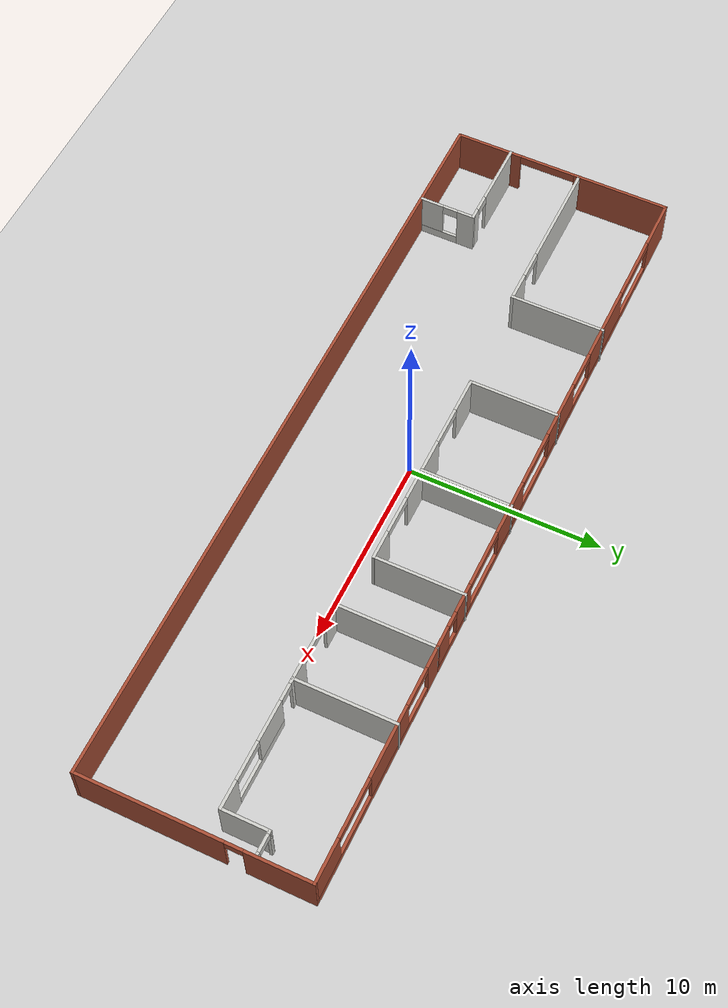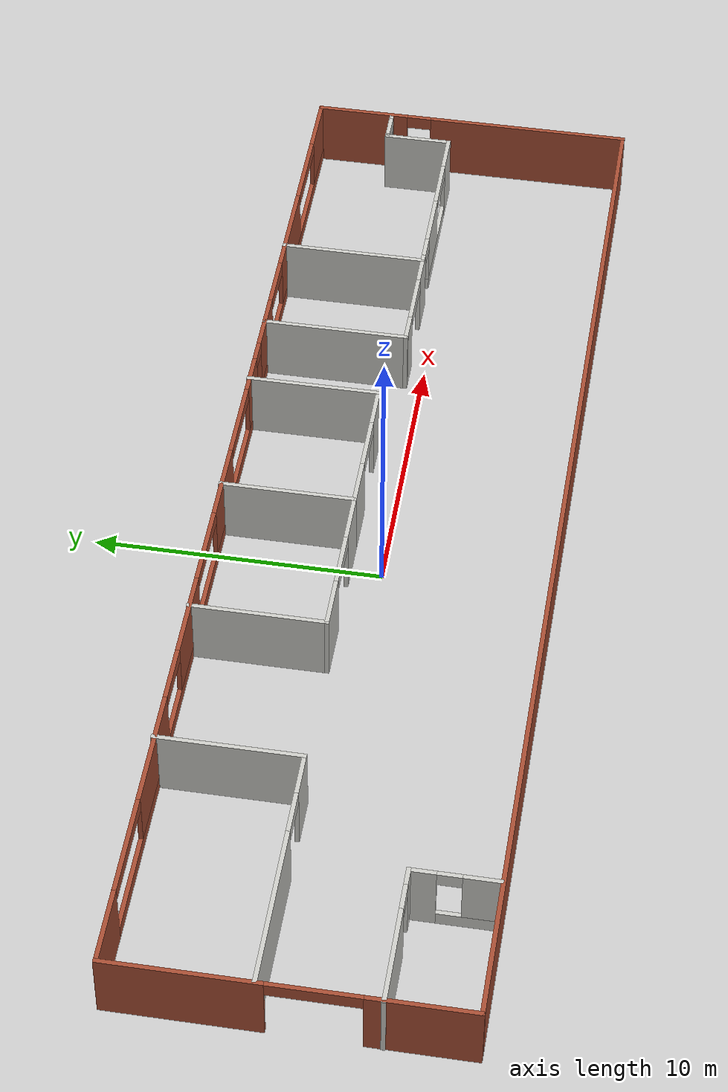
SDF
<sdf version="1.6">
 <world name="default">
  <model name="ground_plane">
   <static>1</static>
   <link name="link">
    <collision name="collision">
     <geometry><plane><normal>0 0 1</normal><size>100 100</size></plane></geometry>
     <surface><friction><ode><mu>100</mu><mu2>50</mu2></ode></friction></surface>
    </collision>
    <visual name="visual">
     <cast_shadows>0</cast_shadows>
     <geometry><plane><normal>0 0 1</normal><size>100 100</size></plane></geometry>
     <material>
      <script><uri>file://media/materials/scripts/gazebo.material</uri><name>Gazebo/Grey</name></script>
     </material>
    </visual>
   </link>
  </model>
  <model name="match_5">
   <pose>1.3159 -0.064447 0 0 -0 0</pose>
   <link name="Wall_0">
    <pose>13.3885 0.676422 0 0 -0 3.14159</pose>
    <visual name="Wall_0_Visual_0">
     <pose>-4.75004 0 1.25 0 -0 0</pose>
     <geometry><box><size>1.49992 0.15 2.5</size></box></geometry>
     <material>
      <script><uri>file://media/materials/scripts/gazebo.material</uri><name>Gazebo/CeilingTiled</name></script>
      <ambient>1 1 1 1</ambient>
     </material>
    </visual>
    <collision name="Wall_0_Collision_0">
     <geometry><box><size>1.49992 0.15 2.5</size></box></geometry>
     <pose>-4.75004 0 1.25 0 -0 0</pose>
    </collision>
    <visual name="Wall_0_Visual_1">
     <pose>1.70753 0 1.25 0 -0 0</pose>
     <geometry><box><size>1.35 0.15 2.5</size></box></geometry>
     <material>
      <script><uri>file://media/materials/scripts/gazebo.material</uri><name>Gazebo/CeilingTiled</name></script>
      <ambient>1 1 1 1</ambient>
     </material>
    </visual>
    <collision name="Wall_0_Collision_1">
     <geometry><box><size>1.35 0.15 2.5</size></box></geometry>
     <pose>1.70753 0 1.25 0 -0 0</pose>
    </collision>
    <visual name="Wall_0_Visual_2">
     <pose>4.94126 0 1.25 0 -0 0</pose>
     <geometry><box><size>1.11747 0.15 2.5</size></box></geometry>
     <material>
      <script><uri>file://media/materials/scripts/gazebo.material</uri><name>Gazebo/CeilingTiled</name></script>
      <ambient>1 1 1 1</ambient>
     </material>
    </visual>
    <collision name="Wall_0_Collision_2">
     <geometry><box><size>1.11747 0.15 2.5</size></box></geometry>
     <pose>4.94126 0 1.25 0 -0 0</pose>
    </collision>
    <visual name="Wall_0_Visual_3">
     <pose>-1.93378 0 0.25 0 -0 0</pose>
     <geometry><box><size>4.13261 0.15 0.5</size></box></geometry>
     <material>
      <script><uri>file://media/materials/scripts/gazebo.material</uri><name>Gazebo/CeilingTiled</name></script>
      <ambient>1 1 1 1</ambient>
     </material>
    </visual>
    <collision name="Wall_0_Collision_3">
     <geometry><box><size>4.13261 0.15 0.5</size></box></geometry>
     <pose>-1.93378 0 0.25 0 -0 0</pose>
    </collision>
    <visual name="Wall_0_Visual_4">
     <pose>-0.933776 0 1.5 0 -0 0</pose>
     <geometry><box><size>2.13261 0.15 2</size></box></geometry>
     <material>
      <script><uri>file://media/materials/scripts/gazebo.material</uri><name>Gazebo/CeilingTiled</name></script>
      <ambient>1 1 1 1</ambient>
     </material>
    </visual>
    <collision name="Wall_0_Collision_4">
     <geometry><box><size>2.13261 0.15 2</size></box></geometry>
     <pose>-0.933776 0 1.5 0 -0 0</pose>
    </collision>
    <visual name="Wall_0_Visual_5">
     <pose>-3.00008 0 2.25 0 -0 0</pose>
     <geometry><box><size>2 0.15 0.5</size></box></geometry>
     <material>
      <script><uri>file://media/materials/scripts/gazebo.material</uri><name>Gazebo/CeilingTiled</name></script>
      <ambient>1 1 1 1</ambient>
     </material>
    </visual>
    <collision name="Wall_0_Collision_5">
     <geometry><box><size>2 0.15 0.5</size></box></geometry>
     <pose>-3.00008 0 2.25 0 -0 0</pose>
    </collision>
    <visual name="Wall_0_Visual_6">
     <pose>3.38253 0 2.25 0 -0 0</pose>
     <geometry><box><size>2 0.15 0.5</size></box></geometry>
     <material>
      <script><uri>file://media/materials/scripts/gazebo.material</uri><name>Gazebo/CeilingTiled</name></script>
      <ambient>1 1 1 1</ambient>
     </material>
    </visual>
    <collision name="Wall_0_Collision_6">
     <geometry><box><size>2 0.15 0.5</size></box></geometry>
     <pose>3.38253 0 2.25 0 -0 0</pose>
    </collision>
    <visual name="Wall_0_Visual_7">
     <pose>0.582528 0 2.25 0 -0 0</pose>
     <geometry><box><size>0.9 0.15 0.5</size></box></geometry>
     <material>
      <script><uri>file://media/materials/scripts/gazebo.material</uri><name>Gazebo/CeilingTiled</name></script>
      <ambient>1 1 1 1</ambient>
     </material>
    </visual>
    <collision name="Wall_0_Collision_7">
     <geometry><box><size>0.9 0.15 0.5</size></box></geometry>
     <pose>0.582528 0 2.25 0 -0 0</pose>
    </collision>
   </link>
   <link name="Wall_1">
    <collision name="Wall_1_Collision">
     <geometry><box><size>5.25 0.15 2.5</size></box></geometry>
     <pose>0 0 1.25 0 -0 0</pose>
    </collision>
    <visual name="Wall_1_Visual">
     <pose>0 0 1.25 0 -0 0</pose>
     <geometry><box><size>5.25 0.15 2.5</size></box></geometry>
     <material>
      <script><uri>file://media/materials/scripts/gazebo.material</uri><name>Gazebo/CeilingTiled</name></script>
      <ambient>1 1 1 1</ambient>
     </material>
    </visual>
    <pose>7.96355 3.22642 0 0 -0 1.5708</pose>
   </link>
   <link name="Wall_11">
    <pose>-6.03645 5.77642 0 0 -0 0</pose>
    <visual name="Wall_11_Visual_0">
     <pose>-12.7347 0 1.25 0 -0 0</pose>
     <geometry><box><size>2.68052 0.15 2.5</size></box></geometry>
     <material>
      <script><uri>file://media/materials/scripts/gazebo.material</uri><name>Gazebo/Bricks</name></script>
      <ambient>1 1 1 1</ambient>
     </material>
    </visual>
    <collision name="Wall_11_Collision_0">
     <geometry><box><size>2.68052 0.15 2.5</size></box></geometry>
     <pose>-12.7347 0 1.25 0 -0 0</pose>
    </collision>
    <visual name="Wall_11_Visual_1">
     <pose>1.34026 0 0.25 0 -0 0</pose>
     <geometry><box><size>25.4695 0.15 0.5</size></box></geometry>
     <material>
      <script><uri>file://media/materials/scripts/gazebo.material</uri><name>Gazebo/Bricks</name></script>
      <ambient>1 1 1 1</ambient>
     </material>
    </visual>
    <collision name="Wall_11_Collision_1">
     <geometry><box><size>25.4695 0.15 0.5</size></box></geometry>
     <pose>1.34026 0 0.25 0 -0 0</pose>
    </collision>
    <visual name="Wall_11_Visual_2">
     <pose>-5.79992 0 1.5 0 -0 0</pose>
     <geometry><box><size>4.18913 0.15 2</size></box></geometry>
     <material>
      <script><uri>file://media/materials/scripts/gazebo.material</uri><name>Gazebo/Bricks</name></script>
      <ambient>1 1 1 1</ambient>
     </material>
    </visual>
    <collision name="Wall_11_Collision_2">
     <geometry><box><size>4.18913 0.15 2</size></box></geometry>
     <pose>-5.79992 0 1.5 0 -0 0</pose>
    </collision>
    <visual name="Wall_11_Visual_3">
     <pose>-0.120572 0 1.5 0 -0 0</pose>
     <geometry><box><size>3.16956 0.15 2</size></box></geometry>
     <material>
      <script><uri>file://media/materials/scripts/gazebo.material</uri><name>Gazebo/Bricks</name></script>
      <ambient>1 1 1 1</ambient>
     </material>
    </visual>
    <collision name="Wall_11_Collision_3">
     <geometry><box><size>3.16956 0.15 2</size></box></geometry>
     <pose>-0.120572 0 1.5 0 -0 0</pose>
    </collision>
    <visual name="Wall_11_Visual_4">
     <pose>5.96421 0 1.5 0 -0 0</pose>
     <geometry><box><size>3 0.15 2</size></box></geometry>
     <material>
      <script><uri>file://media/materials/scripts/gazebo.material</uri><name>Gazebo/Bricks</name></script>
      <ambient>1 1 1 1</ambient>
     </material>
    </visual>
    <collision name="Wall_11_Collision_4">
     <geometry><box><size>3 0.15 2</size></box></geometry>
     <pose>5.96421 0 1.5 0 -0 0</pose>
    </collision>
    <visual name="Wall_11_Visual_5">
     <pose>11.2533 0 1.5 0 -0 0</pose>
     <geometry><box><size>1.57826 0.15 2</size></box></geometry>
     <material>
      <script><uri>file://media/materials/scripts/gazebo.material</uri><name>Gazebo/Bricks</name></script>
      <ambient>1 1 1 1</ambient>
     </material>
    </visual>
    <collision name="Wall_11_Collision_5">
     <geometry><box><size>1.57826 0.15 2</size></box></geometry>
     <pose>11.2533 0 1.5 0 -0 0</pose>
    </collision>
    <visual name="Wall_11_Visual_6">
     <pose>13.4587 0 1.5 0 -0 0</pose>
     <geometry><box><size>1.23253 0.15 2</size></box></geometry>
     <material>
      <script><uri>file://media/materials/scripts/gazebo.material</uri><name>Gazebo/Bricks</name></script>
      <ambient>1 1 1 1</ambient>
     </material>
    </visual>
    <collision name="Wall_11_Collision_6">
     <geometry><box><size>1.23253 0.15 2</size></box></geometry>
     <pose>13.4587 0 1.5 0 -0 0</pose>
    </collision>
    <visual name="Wall_11_Visual_7">
     <pose>-9.64448 0 2.25 0 -0 0</pose>
     <geometry><box><size>3.5 0.15 0.5</size></box></geometry>
     <material>
      <script><uri>file://media/materials/scripts/gazebo.material</uri><name>Gazebo/Bricks</name></script>
      <ambient>1 1 1 1</ambient>
     </material>
    </visual>
    <collision name="Wall_11_Collision_7">
     <geometry><box><size>3.5 0.15 0.5</size></box></geometry>
     <pose>-9.64448 0 2.25 0 -0 0</pose>
    </collision>
    <visual name="Wall_11_Visual_8">
     <pose>-2.70535 0 2.25 0 -0 0</pose>
     <geometry><box><size>2 0.15 0.5</size></box></geometry>
     <material>
      <script><uri>file://media/materials/scripts/gazebo.material</uri><name>Gazebo/Bricks</name></script>
      <ambient>1 1 1 1</ambient>
     </material>
    </visual>
    <collision name="Wall_11_Collision_8">
     <geometry><box><size>2 0.15 0.5</size></box></geometry>
     <pose>-2.70535 0 2.25 0 -0 0</pose>
    </collision>
    <visual name="Wall_11_Visual_9">
     <pose>2.96421 0 2.25 0 -0 0</pose>
     <geometry><box><size>3 0.15 0.5</size></box></geometry>
     <material>
      <script><uri>file://media/materials/scripts/gazebo.material</uri><name>Gazebo/Bricks</name></script>
      <ambient>1 1 1 1</ambient>
     </material>
    </visual>
    <collision name="Wall_11_Collision_9">
     <geometry><box><size>3 0.15 0.5</size></box></geometry>
     <pose>2.96421 0 2.25 0 -0 0</pose>
    </collision>
    <visual name="Wall_11_Visual_10">
     <pose>8.96421 0 2.25 0 -0 0</pose>
     <geometry><box><size>3 0.15 0.5</size></box></geometry>
     <material>
      <script><uri>file://media/materials/scripts/gazebo.material</uri><name>Gazebo/Bricks</name></script>
      <ambient>1 1 1 1</ambient>
     </material>
    </visual>
    <collision name="Wall_11_Collision_10">
     <geometry><box><size>3 0.15 0.5</size></box></geometry>
     <pose>8.96421 0 2.25 0 -0 0</pose>
    </collision>
    <visual name="Wall_11_Visual_11">
     <pose>12.4425 0 2.25 0 -0 0</pose>
     <geometry><box><size>0.8 0.15 0.5</size></box></geometry>
     <material>
      <script><uri>file://media/materials/scripts/gazebo.material</uri><name>Gazebo/Bricks</name></script>
      <ambient>1 1 1 1</ambient>
     </material>
    </visual>
    <collision name="Wall_11_Collision_11">
     <geometry><box><size>0.8 0.15 0.5</size></box></geometry>
     <pose>12.4425 0 2.25 0 -0 0</pose>
    </collision>
   </link>
   <link name="Wall_13">
    <collision name="Wall_13_Collision">
     <geometry><box><size>5 0.15 2.5</size></box></geometry>
     <pose>0 0 1.25 0 -0 0</pose>
    </collision>
    <visual name="Wall_13_Visual">
     <pose>0 0 1.25 0 -0 0</pose>
     <geometry><box><size>5 0.15 2.5</size></box></geometry>
     <material>
      <script><uri>file://media/materials/scripts/gazebo.material</uri><name>Gazebo/CeilingTiled</name></script>
      <ambient>1 1 1 1</ambient>
     </material>
    </visual>
    <pose>-11.3817 3.39858 0 0 0 -1.5708</pose>
   </link>
   <link name="Wall_14">
    <pose>-15.6817 0.973578 0 0 -0 3.14159</pose>
    <visual name="Wall_14_Visual_0">
     <pose>-3.58899 0 1.25 0 -0 0</pose>
     <geometry><box><size>1.57202 0.15 2.5</size></box></geometry>
     <material>
      <script><uri>file://media/materials/scripts/gazebo.material</uri><name>Gazebo/CeilingTiled</name></script>
      <ambient>1 1 1 1</ambient>
     </material>
    </visual>
    <collision name="Wall_14_Collision_0">
     <geometry><box><size>1.57202 0.15 2.5</size></box></geometry>
     <pose>-3.58899 0 1.25 0 -0 0</pose>
    </collision>
    <visual name="Wall_14_Visual_1">
     <pose>1.53601 0 1.25 0 -0 0</pose>
     <geometry><box><size>5.67798 0.15 2.5</size></box></geometry>
     <material>
      <script><uri>file://media/materials/scripts/gazebo.material</uri><name>Gazebo/CeilingTiled</name></script>
      <ambient>1 1 1 1</ambient>
     </material>
    </visual>
    <collision name="Wall_14_Collision_1">
     <geometry><box><size>5.67798 0.15 2.5</size></box></geometry>
     <pose>1.53601 0 1.25 0 -0 0</pose>
    </collision>
    <visual name="Wall_14_Visual_2">
     <pose>-2.05298 0 2.25 0 -0 0</pose>
     <geometry><box><size>1.5 0.15 0.5</size></box></geometry>
     <material>
      <script><uri>file://media/materials/scripts/gazebo.material</uri><name>Gazebo/CeilingTiled</name></script>
      <ambient>1 1 1 1</ambient>
     </material>
    </visual>
    <collision name="Wall_14_Collision_2">
     <geometry><box><size>1.5 0.15 0.5</size></box></geometry>
     <pose>-2.05298 0 2.25 0 -0 0</pose>
    </collision>
   </link>
   <link name="Wall_17">
    <pose>-2.97277 1.20854 0 0 -0 0</pose>
    <visual name="Wall_17_Visual_0">
     <pose>-1.92637 0 1.25 0 -0 0</pose>
     <geometry><box><size>1.89726 0.15 2.5</size></box></geometry>
     <material>
      <script><uri>file://media/materials/scripts/gazebo.material</uri><name>Gazebo/CeilingTiled</name></script>
      <ambient>1 1 1 1</ambient>
     </material>
    </visual>
    <collision name="Wall_17_Collision_0">
     <geometry><box><size>1.89726 0.15 2.5</size></box></geometry>
     <pose>-1.92637 0 1.25 0 -0 0</pose>
    </collision>
    <visual name="Wall_17_Visual_1">
     <pose>1.94863 0 1.25 0 -0 0</pose>
     <geometry><box><size>1.85274 0.15 2.5</size></box></geometry>
     <material>
      <script><uri>file://media/materials/scripts/gazebo.material</uri><name>Gazebo/CeilingTiled</name></script>
      <ambient>1 1 1 1</ambient>
     </material>
    </visual>
    <collision name="Wall_17_Collision_1">
     <geometry><box><size>1.85274 0.15 2.5</size></box></geometry>
     <pose>1.94863 0 1.25 0 -0 0</pose>
    </collision>
    <visual name="Wall_17_Visual_2">
     <pose>0.022262 0 2.25 0 -0 0</pose>
     <geometry><box><size>2 0.15 0.5</size></box></geometry>
     <material>
      <script><uri>file://media/materials/scripts/gazebo.material</uri><name>Gazebo/CeilingTiled</name></script>
      <ambient>1 1 1 1</ambient>
     </material>
    </visual>
    <collision name="Wall_17_Collision_2">
     <geometry><box><size>2 0.15 0.5</size></box></geometry>
     <pose>0.022262 0 2.25 0 -0 0</pose>
    </collision>
   </link>
   <link name="Wall_18">
    <collision name="Wall_18_Collision">
     <geometry><box><size>4.75 0.15 2.5</size></box></geometry>
     <pose>0 0 1.25 0 -0 0</pose>
    </collision>
    <visual name="Wall_18_Visual">
     <pose>0 0 1.25 0 -0 0</pose>
     <geometry><box><size>4.75 0.15 2.5</size></box></geometry>
     <material>
      <script><uri>file://media/materials/scripts/gazebo.material</uri><name>Gazebo/CeilingTiled</name></script>
      <ambient>1 1 1 1</ambient>
     </material>
    </visual>
    <pose>-0.172766 3.50854 0 0 -0 1.5708</pose>
   </link>
   <link name="Wall_2">
    <pose>14.0135 5.77642 0 0 -0 0</pose>
    <visual name="Wall_2_Visual_0">
     <pose>-5.53148 0 1.25 0 -0 0</pose>
     <geometry><box><size>1.18704 0.15 2.5</size></box></geometry>
     <material>
      <script><uri>file://media/materials/scripts/gazebo.material</uri><name>Gazebo/Bricks</name></script>
      <ambient>1 1 1 1</ambient>
     </material>
    </visual>
    <collision name="Wall_2_Collision_0">
     <geometry><box><size>1.18704 0.15 2.5</size></box></geometry>
     <pose>-5.53148 0 1.25 0 -0 0</pose>
    </collision>
    <visual name="Wall_2_Visual_1">
     <pose>0.593519 0 0.25 0 -0 0</pose>
     <geometry><box><size>11.063 0.15 0.5</size></box></geometry>
     <material>
      <script><uri>file://media/materials/scripts/gazebo.material</uri><name>Gazebo/Bricks</name></script>
      <ambient>1 1 1 1</ambient>
     </material>
    </visual>
    <collision name="Wall_2_Collision_1">
     <geometry><box><size>11.063 0.15 0.5</size></box></geometry>
     <pose>0.593519 0 0.25 0 -0 0</pose>
    </collision>
    <visual name="Wall_2_Visual_2">
     <pose>-1.04883 0 1.5 0 -0 0</pose>
     <geometry><box><size>3.77826 0.15 2</size></box></geometry>
     <material>
      <script><uri>file://media/materials/scripts/gazebo.material</uri><name>Gazebo/Bricks</name></script>
      <ambient>1 1 1 1</ambient>
     </material>
    </visual>
    <collision name="Wall_2_Collision_2">
     <geometry><box><size>3.77826 0.15 2</size></box></geometry>
     <pose>-1.04883 0 1.5 0 -0 0</pose>
    </collision>
    <visual name="Wall_2_Visual_3">
     <pose>4.98265 0 1.5 0 -0 0</pose>
     <geometry><box><size>2.2847 0.15 2</size></box></geometry>
     <material>
      <script><uri>file://media/materials/scripts/gazebo.material</uri><name>Gazebo/Bricks</name></script>
      <ambient>1 1 1 1</ambient>
     </material>
    </visual>
    <collision name="Wall_2_Collision_3">
     <geometry><box><size>2.2847 0.15 2</size></box></geometry>
     <pose>4.98265 0 1.5 0 -0 0</pose>
    </collision>
    <visual name="Wall_2_Visual_4">
     <pose>-3.93796 0 2.25 0 -0 0</pose>
     <geometry><box><size>2 0.15 0.5</size></box></geometry>
     <material>
      <script><uri>file://media/materials/scripts/gazebo.material</uri><name>Gazebo/Bricks</name></script>
      <ambient>1 1 1 1</ambient>
     </material>
    </visual>
    <collision name="Wall_2_Collision_4">
     <geometry><box><size>2 0.15 0.5</size></box></geometry>
     <pose>-3.93796 0 2.25 0 -0 0</pose>
    </collision>
    <visual name="Wall_2_Visual_5">
     <pose>2.3403 0 2.25 0 -0 0</pose>
     <geometry><box><size>3 0.15 0.5</size></box></geometry>
     <material>
      <script><uri>file://media/materials/scripts/gazebo.material</uri><name>Gazebo/Bricks</name></script>
      <ambient>1 1 1 1</ambient>
     </material>
    </visual>
    <collision name="Wall_2_Collision_5">
     <geometry><box><size>3 0.15 0.5</size></box></geometry>
     <pose>2.3403 0 2.25 0 -0 0</pose>
    </collision>
   </link>
   <link name="Wall_22">
    <collision name="Wall_22_Collision">
     <geometry><box><size>2.5 0.15 2.5</size></box></geometry>
     <pose>0 0 1.25 0 -0 0</pose>
    </collision>
    <visual name="Wall_22_Visual">
     <pose>0 0 1.25 0 -0 0</pose>
     <geometry><box><size>2.5 0.15 2.5</size></box></geometry>
     <material>
      <script><uri>file://media/materials/scripts/gazebo.material</uri><name>Gazebo/CeilingTiled</name></script>
      <ambient>1 1 1 1</ambient>
     </material>
    </visual>
    <pose>18.8135 1.85142 0 0 -0 1.5708</pose>
   </link>
   <link name="Wall_23">
    <pose>19.3635 3.02642 0 0 -0 0</pose>
    <visual name="Wall_23_Visual_0">
     <pose>-0.520611 0 1.25 0 -0 0</pose>
     <geometry><box><size>0.208777 0.15 2.5</size></box></geometry>
     <material>
      <script><uri>file://media/materials/scripts/gazebo.material</uri><name>Gazebo/CeilingTiled</name></script>
      <ambient>1 1 1 1</ambient>
     </material>
    </visual>
    <collision name="Wall_23_Collision_0">
     <geometry><box><size>0.208777 0.15 2.5</size></box></geometry>
     <pose>-0.520611 0 1.25 0 -0 0</pose>
    </collision>
    <visual name="Wall_23_Visual_1">
     <pose>0.554389 0 1.25 0 -0 0</pose>
     <geometry><box><size>0.141223 0.15 2.5</size></box></geometry>
     <material>
      <script><uri>file://media/materials/scripts/gazebo.material</uri><name>Gazebo/CeilingTiled</name></script>
      <ambient>1 1 1 1</ambient>
     </material>
    </visual>
    <collision name="Wall_23_Collision_1">
     <geometry><box><size>0.141223 0.15 2.5</size></box></geometry>
     <pose>0.554389 0 1.25 0 -0 0</pose>
    </collision>
    <visual name="Wall_23_Visual_2">
     <pose>0.033777 0 2.25 0 -0 0</pose>
     <geometry><box><size>0.9 0.15 0.5</size></box></geometry>
     <material>
      <script><uri>file://media/materials/scripts/gazebo.material</uri><name>Gazebo/CeilingTiled</name></script>
      <ambient>1 1 1 1</ambient>
     </material>
    </visual>
    <collision name="Wall_23_Collision_2">
     <geometry><box><size>0.9 0.15 0.5</size></box></geometry>
     <pose>0.033777 0 2.25 0 -0 0</pose>
    </collision>
   </link>
   <link name="Wall_27">
    <collision name="Wall_27_Collision">
     <geometry><box><size>4.75 0.15 2.5</size></box></geometry>
     <pose>0 0 1.25 0 -0 0</pose>
    </collision>
    <visual name="Wall_27_Visual">
     <pose>0 0 1.25 0 -0 0</pose>
     <geometry><box><size>4.75 0.15 2.5</size></box></geometry>
     <material>
      <script><uri>file://media/materials/scripts/gazebo.material</uri><name>Gazebo/CeilingTiled</name></script>
      <ambient>1 1 1 1</ambient>
     </material>
    </visual>
    <pose>-5.77277 3.50854 0 0 -0 1.5708</pose>
   </link>
   <link name="Wall_29">
    <collision name="Wall_29_Collision">
     <geometry><box><size>5.25 0.15 2.5</size></box></geometry>
     <pose>0 0 1.25 0 -0 0</pose>
    </collision>
    <visual name="Wall_29_Visual">
     <pose>0 0 1.25 0 -0 0</pose>
     <geometry><box><size>5.25 0.15 2.5</size></box></geometry>
     <material>
      <script><uri>file://media/materials/scripts/gazebo.material</uri><name>Gazebo/CeilingTiled</name></script>
      <ambient>1 1 1 1</ambient>
     </material>
    </visual>
    <pose>12.0775 3.23316 0 0 -0 1.5708</pose>
   </link>
   <link name="Wall_3">
    <pose>20.0635 -0.023578 0 0 0 -1.5708</pose>
    <visual name="Wall_3_Visual_0">
     <pose>-4.16442 0 1.25 0 -0 0</pose>
     <geometry><box><size>3.42116 0.15 2.5</size></box></geometry>
     <material>
      <script><uri>file://media/materials/scripts/gazebo.material</uri><name>Gazebo/Bricks</name></script>
      <ambient>1 1 1 1</ambient>
     </material>
    </visual>
    <collision name="Wall_3_Collision_0">
     <geometry><box><size>3.42116 0.15 2.5</size></box></geometry>
     <pose>-4.16442 0 1.25 0 -0 0</pose>
    </collision>
    <visual name="Wall_3_Visual_1">
     <pose>2.16058 0 1.25 0 -0 0</pose>
     <geometry><box><size>7.42884 0.15 2.5</size></box></geometry>
     <material>
      <script><uri>file://media/materials/scripts/gazebo.material</uri><name>Gazebo/Bricks</name></script>
      <ambient>1 1 1 1</ambient>
     </material>
    </visual>
    <collision name="Wall_3_Collision_1">
     <geometry><box><size>7.42884 0.15 2.5</size></box></geometry>
     <pose>2.16058 0 1.25 0 -0 0</pose>
    </collision>
    <visual name="Wall_3_Visual_2">
     <pose>-2.00384 0 2.25 0 -0 0</pose>
     <geometry><box><size>0.9 0.15 0.5</size></box></geometry>
     <material>
      <script><uri>file://media/materials/scripts/gazebo.material</uri><name>Gazebo/Bricks</name></script>
      <ambient>1 1 1 1</ambient>
     </material>
    </visual>
    <collision name="Wall_3_Collision_2">
     <geometry><box><size>0.9 0.15 0.5</size></box></geometry>
     <pose>-2.00384 0 2.25 0 -0 0</pose>
    </collision>
   </link>
   <link name="Wall_31">
    <pose>-17.6385 -2.9067 0 0 -0 0</pose>
    <visual name="Wall_31_Visual_0">
     <pose>-0.774457 0 1.25 0 -0 0</pose>
     <geometry><box><size>3.45109 0.15 2.5</size></box></geometry>
     <material>
      <script><uri>file://media/materials/scripts/gazebo.material</uri><name>Gazebo/CeilingTiled</name></script>
      <ambient>1 1 1 1</ambient>
     </material>
    </visual>
    <collision name="Wall_31_Collision_0">
     <geometry><box><size>3.45109 0.15 2.5</size></box></geometry>
     <pose>-0.774457 0 1.25 0 -0 0</pose>
    </collision>
    <visual name="Wall_31_Visual_1">
     <pose>2.17554 0 1.25 0 -0 0</pose>
     <geometry><box><size>0.648913 0.15 2.5</size></box></geometry>
     <material>
      <script><uri>file://media/materials/scripts/gazebo.material</uri><name>Gazebo/CeilingTiled</name></script>
      <ambient>1 1 1 1</ambient>
     </material>
    </visual>
    <collision name="Wall_31_Collision_1">
     <geometry><box><size>0.648913 0.15 2.5</size></box></geometry>
     <pose>2.17554 0 1.25 0 -0 0</pose>
    </collision>
    <visual name="Wall_31_Visual_2">
     <pose>1.40109 0 2.25 0 -0 0</pose>
     <geometry><box><size>0.9 0.15 0.5</size></box></geometry>
     <material>
      <script><uri>file://media/materials/scripts/gazebo.material</uri><name>Gazebo/CeilingTiled</name></script>
      <ambient>1 1 1 1</ambient>
     </material>
    </visual>
    <collision name="Wall_31_Collision_2">
     <geometry><box><size>0.9 0.15 0.5</size></box></geometry>
     <pose>1.40109 0 2.25 0 -0 0</pose>
    </collision>
   </link>
   <link name="Wall_32">
    <pose>-15.2135 -4.3317 0 0 0 -1.5708</pose>
    <visual name="Wall_32_Visual_0">
     <pose>-1.02772 0 1.25 0 -0 0</pose>
     <geometry><box><size>0.944565 0.15 2.5</size></box></geometry>
     <material>
      <script><uri>file://media/materials/scripts/gazebo.material</uri><name>Gazebo/CeilingTiled</name></script>
      <ambient>1 1 1 1</ambient>
     </material>
    </visual>
    <collision name="Wall_32_Collision_0">
     <geometry><box><size>0.944565 0.15 2.5</size></box></geometry>
     <pose>-1.02772 0 1.25 0 -0 0</pose>
    </collision>
    <visual name="Wall_32_Visual_1">
     <pose>0.472283 0 0.25 0 -0 0</pose>
     <geometry><box><size>2.05544 0.15 0.5</size></box></geometry>
     <material>
      <script><uri>file://media/materials/scripts/gazebo.material</uri><name>Gazebo/CeilingTiled</name></script>
      <ambient>1 1 1 1</ambient>
     </material>
    </visual>
    <collision name="Wall_32_Collision_1">
     <geometry><box><size>2.05544 0.15 0.5</size></box></geometry>
     <pose>0.472283 0 0.25 0 -0 0</pose>
    </collision>
    <visual name="Wall_32_Visual_2">
     <pose>0.872283 0 1.5 0 -0 0</pose>
     <geometry><box><size>1.25544 0.15 2</size></box></geometry>
     <material>
      <script><uri>file://media/materials/scripts/gazebo.material</uri><name>Gazebo/CeilingTiled</name></script>
      <ambient>1 1 1 1</ambient>
     </material>
    </visual>
    <collision name="Wall_32_Collision_2">
     <geometry><box><size>1.25544 0.15 2</size></box></geometry>
     <pose>0.872283 0 1.5 0 -0 0</pose>
    </collision>
    <visual name="Wall_32_Visual_3">
     <pose>-0.155435 0 2.25 0 -0 0</pose>
     <geometry><box><size>0.8 0.15 0.5</size></box></geometry>
     <material>
      <script><uri>file://media/materials/scripts/gazebo.material</uri><name>Gazebo/CeilingTiled</name></script>
      <ambient>1 1 1 1</ambient>
     </material>
    </visual>
    <collision name="Wall_32_Collision_3">
     <geometry><box><size>0.8 0.15 0.5</size></box></geometry>
     <pose>-0.155435 0 2.25 0 -0 0</pose>
    </collision>
   </link>
   <link name="Wall_36">
    <collision name="Wall_36_Collision">
     <geometry><box><size>4.75 0.15 2.5</size></box></geometry>
     <pose>0 0 1.25 0 -0 0</pose>
    </collision>
    <visual name="Wall_36_Visual">
     <pose>0 0 1.25 0 -0 0</pose>
     <geometry><box><size>4.75 0.15 2.5</size></box></geometry>
     <material>
      <script><uri>file://media/materials/scripts/gazebo.material</uri><name>Gazebo/CeilingTiled</name></script>
      <ambient>1 1 1 1</ambient>
     </material>
    </visual>
    <pose>5.01689 3.50635 0 0 -0 1.5708</pose>
   </link>
   <link name="Wall_4">
    <collision name="Wall_4_Collision">
     <geometry><box><size>40.25 0.15 2.5</size></box></geometry>
     <pose>0 0 1.25 0 -0 0</pose>
    </collision>
    <visual name="Wall_4_Visual">
     <pose>0 0 1.25 0 -0 0</pose>
     <geometry><box><size>40.25 0.15 2.5</size></box></geometry>
     <material>
      <script><uri>file://media/materials/scripts/gazebo.material</uri><name>Gazebo/Bricks</name></script>
      <ambient>1 1 1 1</ambient>
     </material>
    </visual>
    <pose>0.013546 -5.82358 0 0 -0 3.14159</pose>
   </link>
   <link name="Wall_40">
    <pose>2.42206 1.20744 0 0 0 -0.000423</pose>
    <visual name="Wall_40_Visual_0">
     <pose>-1.78205 0 1.25 0 -0 0</pose>
     <geometry><box><size>1.77556 0.15 2.5</size></box></geometry>
     <material>
      <script><uri>file://media/materials/scripts/gazebo.material</uri><name>Gazebo/CeilingTiled</name></script>
      <ambient>1 1 1 1</ambient>
     </material>
    </visual>
    <collision name="Wall_40_Collision_0">
     <geometry><box><size>1.77556 0.15 2.5</size></box></geometry>
     <pose>-1.78205 0 1.25 0 -0 0</pose>
    </collision>
    <visual name="Wall_40_Visual_1">
     <pose>1.88778 0 1.25 0 -0 0</pose>
     <geometry><box><size>1.56409 0.15 2.5</size></box></geometry>
     <material>
      <script><uri>file://media/materials/scripts/gazebo.material</uri><name>Gazebo/CeilingTiled</name></script>
      <ambient>1 1 1 1</ambient>
     </material>
    </visual>
    <collision name="Wall_40_Collision_1">
     <geometry><box><size>1.56409 0.15 2.5</size></box></geometry>
     <pose>1.88778 0 1.25 0 -0 0</pose>
    </collision>
    <visual name="Wall_40_Visual_2">
     <pose>0.105737 0 2.25 0 -0 0</pose>
     <geometry><box><size>2 0.15 0.5</size></box></geometry>
     <material>
      <script><uri>file://media/materials/scripts/gazebo.material</uri><name>Gazebo/CeilingTiled</name></script>
      <ambient>1 1 1 1</ambient>
     </material>
    </visual>
    <collision name="Wall_40_Collision_2">
     <geometry><box><size>2 0.15 0.5</size></box></geometry>
     <pose>0.105737 0 2.25 0 -0 0</pose>
    </collision>
   </link>
   <link name="Wall_9">
    <pose>-20.0365 -0.023578 0 0 -0 1.5708</pose>
    <visual name="Wall_9_Visual_0">
     <pose>-4.07689 0 1.25 0 -0 0</pose>
     <geometry><box><size>3.59623 0.15 2.5</size></box></geometry>
     <material>
      <script><uri>file://media/materials/scripts/gazebo.material</uri><name>Gazebo/Bricks</name></script>
      <ambient>1 1 1 1</ambient>
     </material>
    </visual>
    <collision name="Wall_9_Collision_0">
     <geometry><box><size>3.59623 0.15 2.5</size></box></geometry>
     <pose>-4.07689 0 1.25 0 -0 0</pose>
    </collision>
    <visual name="Wall_9_Visual_1">
     <pose>3.29811 0 1.25 0 -0 0</pose>
     <geometry><box><size>5.15377 0.15 2.5</size></box></geometry>
     <material>
      <script><uri>file://media/materials/scripts/gazebo.material</uri><name>Gazebo/Bricks</name></script>
      <ambient>1 1 1 1</ambient>
     </material>
    </visual>
    <collision name="Wall_9_Collision_1">
     <geometry><box><size>5.15377 0.15 2.5</size></box></geometry>
     <pose>3.29811 0 1.25 0 -0 0</pose>
    </collision>
    <visual name="Wall_9_Visual_2">
     <pose>-0.778773 0 2.25 0 -0 0</pose>
     <geometry><box><size>3 0.15 0.5</size></box></geometry>
     <material>
      <script><uri>file://media/materials/scripts/gazebo.material</uri><name>Gazebo/Bricks</name></script>
      <ambient>1 1 1 1</ambient>
     </material>
    </visual>
    <collision name="Wall_9_Collision_2">
     <geometry><box><size>3 0.15 0.5</size></box></geometry>
     <pose>-0.778773 0 2.25 0 -0 0</pose>
    </collision>
   </link>
   <static>1</static>
  </model>
 </world>
</sdf>
